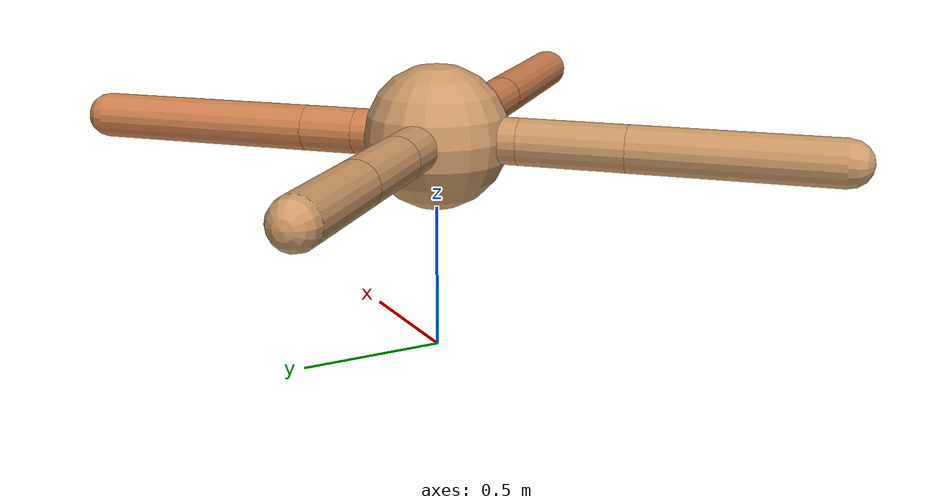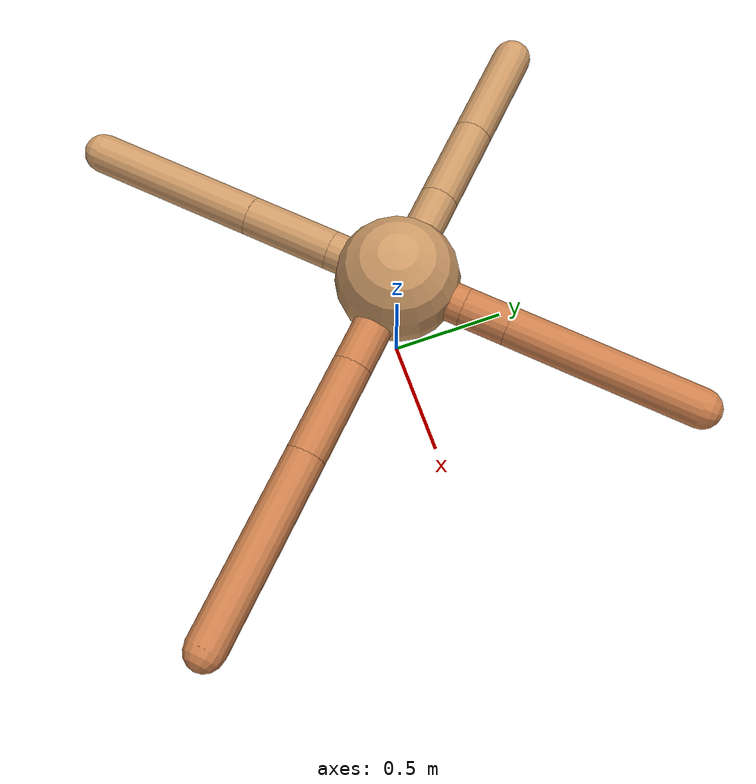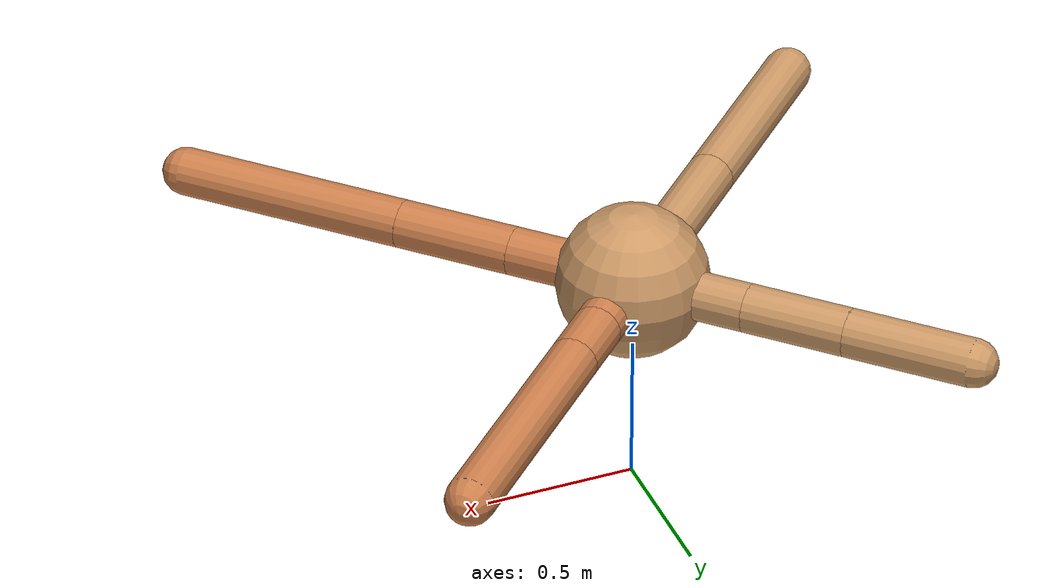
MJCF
<mujoco model="ant">
  <compiler angle="degree" coordinate="local" inertiafromgeom="true" />
  <option integrator="RK4" timestep="0.01" />
  <custom>
    <numeric data="0.0 0.0 0.55 1.0 0.0 0.0 0.0 0.0 1.0 0.0 -1.0 0.0 -1.0 0.0 1.0" name="init_qpos" />
  </custom>
  <default>
    <joint armature="1" damping="1" limited="true" />
    <geom conaffinity="0" condim="3" density="5.0" friction="1.5 0.1 0.1" margin="0.01" rgba="0.8 0.6 0.4 1" />
  </default>
  <worldbody>
    <body name="torso" pos="0 0 0.75">
      <geom name="torso_geom" pos="0 0 0" size="0.25" type="sphere" />

      <body name="front_left_leg" pos="0 0 0">
        <geom fromto="0.0 0.0 0.0 0.2043685624657055 0.2043685624657055 0.0" name="aux_1_geom" size="0.08" type="capsule" rgba=".8 .5 .3 1" />
        <body name="aux_1" pos="0.2043685624657055 0.2043685624657055 0.0">
          <joint axis="0 0 1" name="hip_1" pos="0.0 0.0 0.0" range="-40 40" type="hinge" />
          <geom fromto="0.0 0.0 0.0 0.1325544363395879 0.1325544363395879 0.0" name="left_leg_geom" size="0.08" type="capsule" rgba=".8 .5 .3 1" />
          <body pos="0.1325544363395879 0.1325544363395879 0.0" name="front_left_foot">
            <joint axis="-1 1 0" name="ankle_1" pos="0.0 0.0 0.0" range="30 100" type="hinge" />
            <geom fromto="0.0 0.0 0.0 0.5595037610724514 0.5595037610724514 0.0" name="left_ankle_geom" size="0.08" type="capsule" rgba=".8 .5 .3 1" />
          </body>
        </body>
      </body>
      <body name="front_right_leg" pos="0 0 0">
        <geom fromto="0.0 0.0 0.0 -0.27902791603429206 0.27902791603429206 0.0" name="aux_2_geom" size="0.08" type="capsule" />
        <body name="aux_2" pos="-0.27902791603429206 0.27902791603429206 0.0">
          <joint axis="0 0 1" name="hip_2" pos="0.0 0.0 0.0" range="-40 40" type="hinge" />
          <geom fromto="0.0 0.0 0.0 -0.2411315355105611 0.2411315355105611 0.0" name="right_leg_geom" size="0.08" type="capsule" />
          <body pos="-0.2411315355105611 0.2411315355105611 0.0" name="front_right_foot">
            <joint axis="1 1 0" name="ankle_2" pos="0.0 0.0 0.0" range="-100 -30" type="hinge" />
            <geom fromto="0.0 0.0 0.0 -0.29382827333257866 0.29382827333257866 0.0" name="right_ankle_geom" size="0.08" type="capsule" />
          </body>
        </body>
      </body>
      <body name="left_back_leg" pos="0 0 0">
        <geom fromto="0.0 0.0 0.0 -0.20605862489659407 -0.20605862489659407 0.0" name="aux_3_geom" size="0.08" type="capsule" />
        <body name="aux_3" pos="-0.20605862489659407 -0.20605862489659407 0.0">
          <joint axis="0 0 1" name="hip_3" pos="0.0 0.0 0.0" range="-40 40" type="hinge" />
          <geom fromto="0.0 0.0 0.0 -0.25569090707162406 -0.25569090707162406 0.0" name="back_leg_geom" size="0.08" type="capsule" />
          <body pos="-0.25569090707162406 -0.25569090707162406 0.0" name="left_back_foot">
            <joint axis="-1 1 0" name="ankle_3" pos="0.0 0.0 0.0" range="-100 -30" type="hinge" />
            <geom fromto="0.0 0.0 0.0 -0.48615861819785666 -0.48615861819785666 0.0" name="third_ankle_geom" size="0.08" type="capsule" />
          </body>
        </body>
      </body>
      <body name="right_back_leg" pos="0 0 0">
        <geom fromto="0.0 0.0 0.0 0.2916013443082227 -0.2916013443082227 0.0" name="aux_4_geom" size="0.08" type="capsule" rgba=".8 .5 .3 1" />
        <body name="aux_4" pos="0.2916013443082227 -0.2916013443082227 0.0">
          <joint axis="0 0 1" name="hip_4" pos="0.0 0.0 0.0" range="-40 40" type="hinge" />
          <geom fromto="0.0 0.0 0.0 0.2774492696394527 -0.2774492696394527 0.0" name="rightback_leg_geom" size="0.08" type="capsule" rgba=".8 .5 .3 1" />
          <body pos="0.2774492696394527 -0.2774492696394527 0.0" name="right_back_foot">
            <joint axis="1 1 0" name="ankle_4" pos="0.0 0.0 0.0" range="30 100" type="hinge" />
            <geom fromto="0.0 0.0 0.0 0.5491972145371057 -0.5491972145371057 0.0" name="fourth_ankle_geom" size="0.08" type="capsule" rgba=".8 .5 .3 1" />
          </body>
        </body>
      </body>
    </body>
  </worldbody>
  <actuator>
    <motor ctrllimited="true" ctrlrange="-1.0 1.0" joint="hip_4" gear="150" />
    <motor ctrllimited="true" ctrlrange="-1.0 1.0" joint="ankle_4" gear="150" />
    <motor ctrllimited="true" ctrlrange="-1.0 1.0" joint="hip_1" gear="150" />
    <motor ctrllimited="true" ctrlrange="-1.0 1.0" joint="ankle_1" gear="150" />
    <motor ctrllimited="true" ctrlrange="-1.0 1.0" joint="hip_2" gear="150" />
    <motor ctrllimited="true" ctrlrange="-1.0 1.0" joint="ankle_2" gear="150" />
    <motor ctrllimited="true" ctrlrange="-1.0 1.0" joint="hip_3" gear="150" />
    <motor ctrllimited="true" ctrlrange="-1.0 1.0" joint="ankle_3" gear="150" />
  </actuator>
</mujoco>
